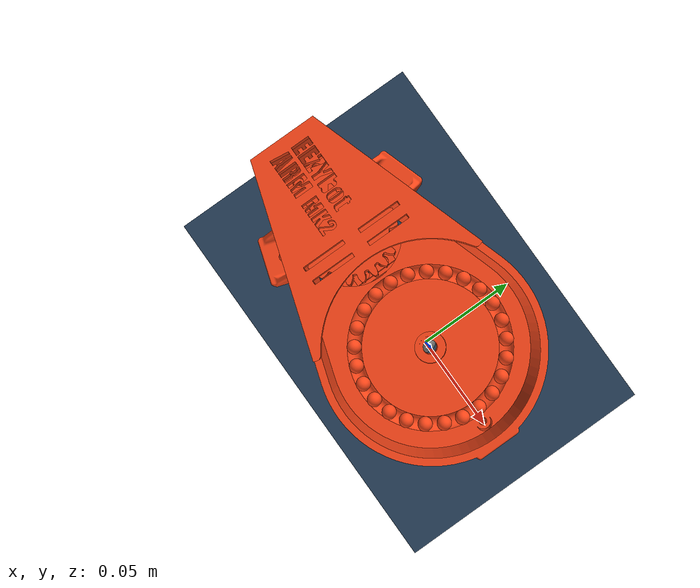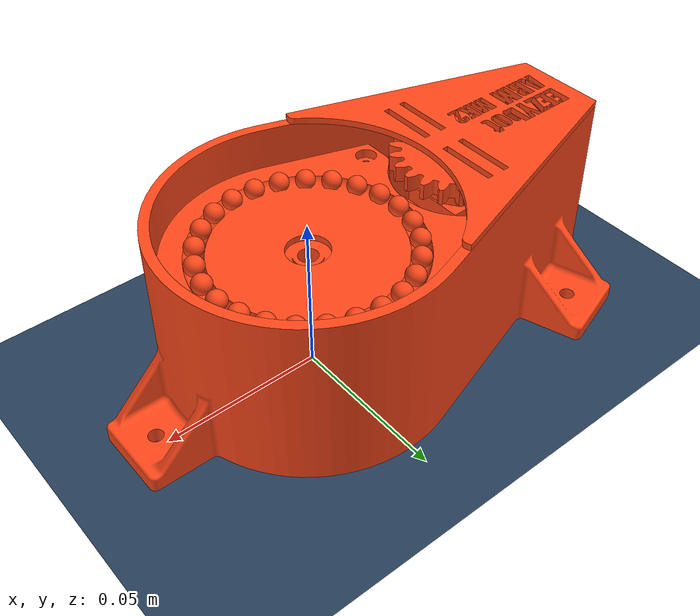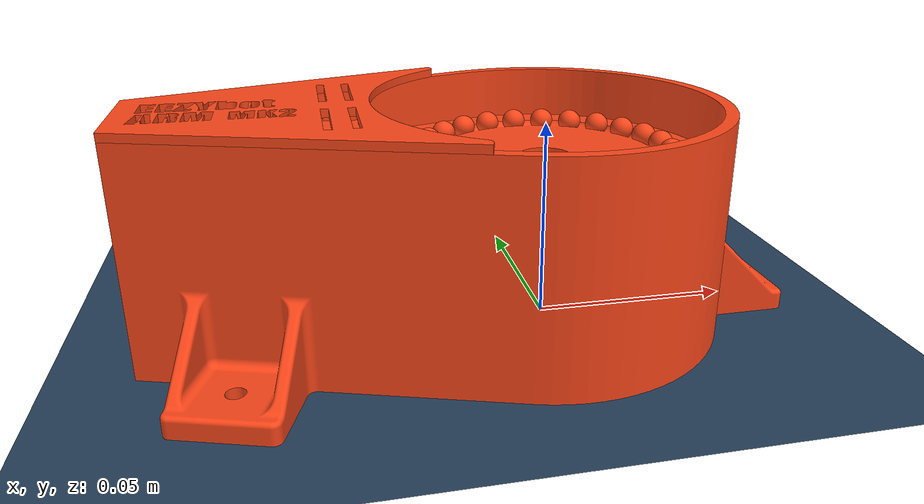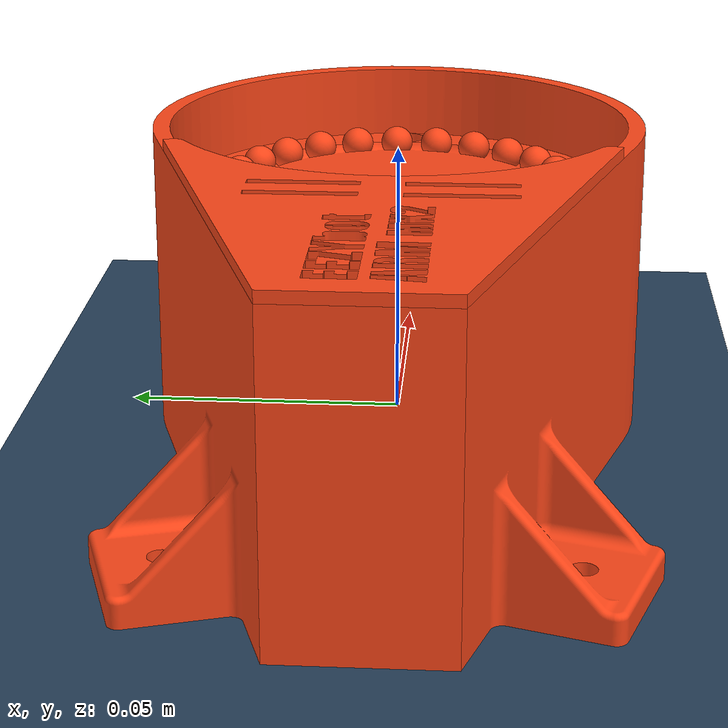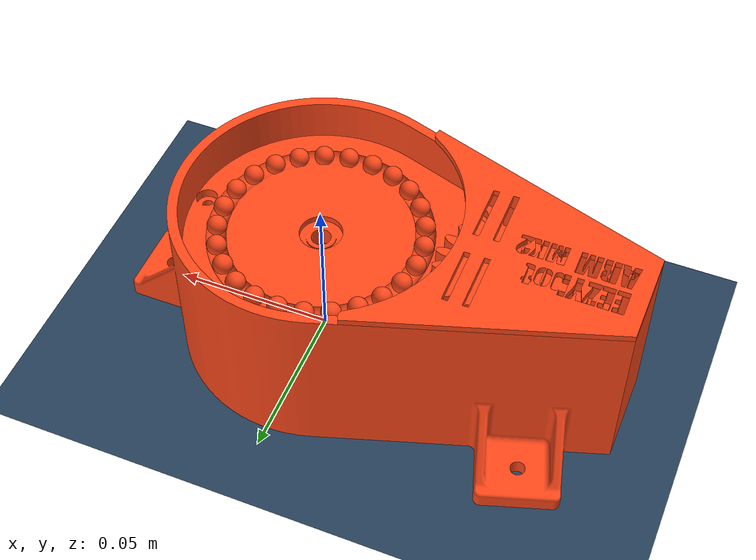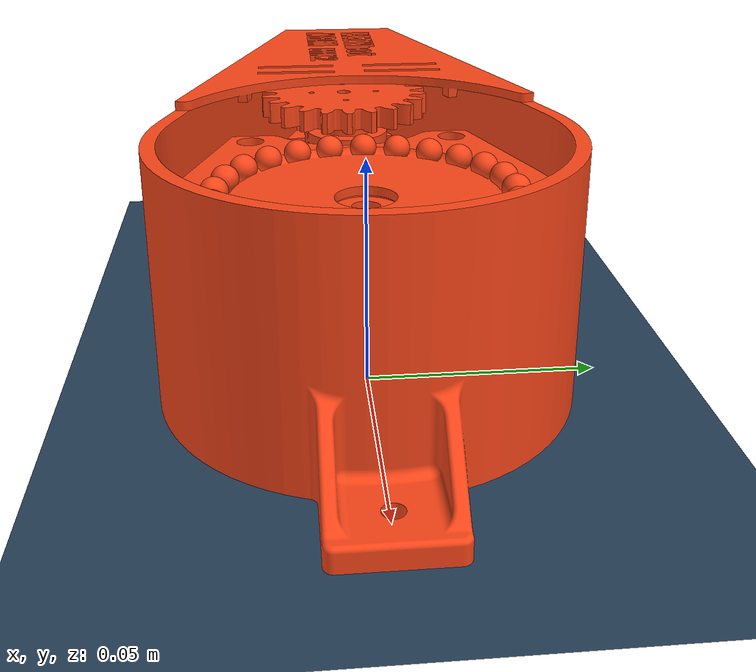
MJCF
<mujoco model="2dof-robot">
  <default>
    <default class="robot">
      <default class="visual">
        <geom material="visualgeom" contype="0" conaffinity="0" group="2" />
      </default>
      <default class="collision">
        <geom material="collision_material" condim="3" contype="0" conaffinity="1" priority="1" group="1" solref="0.005 1" solimp="0.99 0.999 1e-05" friction="1 0.01 0.01" />
      </default>
    </default>
  </default>

  <compiler angle="radian" meshdir="assets"/>

  <asset>
    <texture type="2d" name="groundplane" builtin="checker"
        rgb1="0.2 0.3 0.4" rgb2="0.1 0.2 0.3" width="300" height="300" mark="edge" markrgb="0.8 0.8 0.8"/>
    <material name="groundplane" texture="groundplane" texuniform="true" texrepeat="5 5" reflectance="0.2"/>
  </asset>

  <asset>
    <material name="019_cover_material" rgba="0.843137 0.352941 0 1" />
    <material name="mg946r_material" rgba="0.262745 0.282353 0.301961 1" />
    <material name="020_ball_material" rgba="0.737255 0.937255 0.917647 1" />
    <material name="mg946r_piattelo_material" rgba="0.0431373 0.0392157 0.0392157 1" />
    <material name="606_material" rgba="0.901961 0.901961 0.901961 1" />
    <material name="default_material" rgba="0.7 0.7 0.7 1" />
    <material name="collision_material" rgba="1.0 0.28 0.1 0.9" />
    <mesh name="019_cover.stl" file="019_cover.stl" />
    <mesh name="013_lower_base.stl" file="013_lower_base.stl" />
    <mesh name="mg946r.stl" file="mg946r.stl" />
    <mesh name="020_ball.stl" file="020_ball.stl" />
    <mesh name="010_gearservo.stl" file="010_gearservo.stl" />
    <mesh name="mg946r_piattelo.stl" file="mg946r_piattelo.stl" />
    <mesh name="012_base.stl" file="012_base.stl" />
    <mesh name="606.stl" file="606.stl" />
  </asset>

  <worldbody>
    <geom name="floor" type="plane" size="0 0 0.05" material="groundplane"/>

    <body name="ebamk2_01" pos="0.00000000 0.00000000 0.00000000" quat="1 0 0 0" childclass="robot">
      <freejoint name="floating_base" />
      <geom name="ebamk2_01_collision_0" pos="0 0 0.055" quat="1.0 0.0 0.0 0.0" type="mesh" mesh="019_cover.stl" class="collision" />
      <geom name="ebamk2_01_collision_1" pos="0 -0 0.034" quat="1.0 0.0 0.0 0.0" type="mesh" mesh="013_lower_base.stl" class="collision" />
      <geom name="ebamk2_01_collision_2" pos="-0.06605 -0 0.0085" quat="1.0 0.0 0.0 0.0" type="mesh" mesh="mg946r.stl" class="collision" />
      <geom name="ebamk2_01_collision_3" pos="0 0.0309123 0.0428783" quat="1.0 0.0 0.0 0.0" type="mesh" mesh="020_ball.stl" class="collision" />
      <geom name="ebamk2_01_collision_4" pos="-0.0563 -0.00075 0.04445" quat="0.4999981633974483 -0.49999999999662686 -0.5000018366025516 0.49999999999662686" type="mesh" mesh="010_gearservo.stl" class="collision" />
      <geom name="ebamk2_01_collision_5" pos="-0.0563 -0 0.0459" quat="1.0 0.0 0.0 0.0" type="mesh" mesh="mg946r_piattelo.stl" class="collision" />
      <geom name="ebamk2_01_collision_6" pos="0 0 0" quat="1.0 0.0 0.0 0.0" type="mesh" mesh="012_base.stl" class="collision" />
      <geom name="ebamk2_01_collision_7" pos="0 0 0.037" quat="1.0 0.0 0.0 0.0" type="mesh" mesh="606.stl" class="collision" />
      <geom name="ebamk2_01_collision_8" pos="0.0181698 -0.0250086 0.0428783" quat="0.30901895491635295 0.0 -0.0 -0.9510558792744015" type="mesh" mesh="020_ball.stl" class="collision" />
      <geom name="ebamk2_01_collision_9" pos="0.0261001 0.0165636 0.0428783" quat="0.8763065955319068 0.0 -0.0 -0.48175382782836196" type="mesh" mesh="020_ball.stl" class="collision" />
      <geom name="ebamk2_01_collision_10" pos="-0.0113796 -0.0287415 0.0428783" quat="0.18738206856923498 0.0 0.0 0.9822871068983419" type="mesh" mesh="020_ball.stl" class="collision" />
      <geom name="ebamk2_01_collision_11" pos="0.00387434 -0.0306685 0.0428783" quat="0.06278999429089267 0.0 -0.0 -0.9980267614733332" type="mesh" mesh="020_ball.stl" class="collision" />
      <geom name="ebamk2_01_collision_12" pos="0.0148921 0.0270886 0.0428783" quat="0.9685831393153369 0.0 -0.0 -0.24868997212201094" type="mesh" mesh="020_ball.stl" class="collision" />
      <geom name="ebamk2_01_collision_13" pos="-0.0308513 0.001941 0.0428783" quat="0.7289701586566885 0.0 0.0 0.6845454753250819" type="mesh" mesh="020_ball.stl" class="collision" />
      <geom name="ebamk2_01_collision_14" pos="0.00768757 0.0299411 0.0428783" quat="0.9921147271510997 0.0 -0.0 -0.12533302904621366" type="mesh" mesh="020_ball.stl" class="collision" />
      <geom name="ebamk2_01_collision_15" pos="0.0303647 -0.00579238 0.0428783" quat="0.6374247163463563 0.0 -0.0 -0.7705126416813466" type="mesh" mesh="020_ball.stl" class="collision" />
      <geom name="ebamk2_01_collision_16" pos="0.0308513 0.001941 0.0428783" quat="0.7289701586566885 0.0 -0.0 -0.6845454753250819" type="mesh" mesh="020_ball.stl" class="collision" />
      <geom name="ebamk2_01_collision_17" pos="-0.0303647 -0.00579238 0.0428783" quat="0.6374247163463563 0.0 0.0 0.7705126416813466" type="mesh" mesh="020_ball.stl" class="collision" />
      <geom name="ebamk2_01_collision_18" pos="-0.0261001 0.0165636 0.0428783" quat="0.8763065955319068 0.0 0.0 0.48175382782836196" type="mesh" mesh="020_ball.stl" class="collision" />
      <geom name="ebamk2_01_collision_19" pos="0.0238183 -0.0197042 0.0428783" quat="0.42577780338849947 0.0 -0.0 -0.9048277527472642" type="mesh" mesh="020_ball.stl" class="collision" />
      <geom name="ebamk2_01_collision_20" pos="-0.0148921 0.0270886 0.0428783" quat="0.9685831393153369 0.0 0.0 0.24868997212201094" type="mesh" mesh="020_ball.stl" class="collision" />
      <geom name="ebamk2_01_collision_21" pos="0.0113796 -0.0287415 0.0428783" quat="0.18738206856923498 0.0 -0.0 -0.9822871068983419" type="mesh" mesh="020_ball.stl" class="collision" />
      <geom name="ebamk2_01_collision_22" pos="0.0211609 0.0225341 0.0428783" quat="0.929776529485521 0.0 -0.0 -0.3681244425705254" type="mesh" mesh="020_ball.stl" class="collision" />
      <geom name="ebamk2_01_collision_23" pos="-0.0181698 -0.0250086 0.0428783" quat="0.30901895491635295 0.0 0.0 0.9510558792744015" type="mesh" mesh="020_ball.stl" class="collision" />
      <geom name="ebamk2_01_collision_24" pos="-0.0211609 0.0225341 0.0428783" quat="0.929776529485521 0.0 0.0 0.3681244425705254" type="mesh" mesh="020_ball.stl" class="collision" />
      <geom name="ebamk2_01_collision_25" pos="-0.0238183 -0.0197042 0.0428783" quat="0.42577780338849947 0.0 0.0 0.9048277527472642" type="mesh" mesh="020_ball.stl" class="collision" />
      <geom name="ebamk2_01_collision_26" pos="-0.00768757 0.0299411 0.0428783" quat="0.9921147271510997 0.0 0.0 0.12533302904621366" type="mesh" mesh="020_ball.stl" class="collision" />
      <geom name="ebamk2_01_collision_27" pos="0.0279703 -0.0131618 0.0428783" quat="0.535826498745442 0.0 -0.0 -0.8443281134974725" type="mesh" mesh="020_ball.stl" class="collision" />
      <geom name="ebamk2_01_collision_28" pos="-0.00387434 -0.0306685 0.0428783" quat="0.06278999429089267 0.0 0.0 0.9980267614733332" type="mesh" mesh="020_ball.stl" class="collision" />
      <geom name="ebamk2_01_collision_29" pos="0.0293993 0.00955242 0.0428783" quat="0.8090161307517588 0.0 -0.0 -0.5877864409659797" type="mesh" mesh="020_ball.stl" class="collision" />
      <geom name="ebamk2_01_collision_30" pos="-0.0279703 -0.0131618 0.0428783" quat="0.535826498745442 0.0 0.0 0.8443281134974725" type="mesh" mesh="020_ball.stl" class="collision" />
      <geom name="ebamk2_01_collision_31" pos="-0.0293993 0.00955242 0.0428783" quat="0.8090161307517588 0.0 0.0 0.5877864409659797" type="mesh" mesh="020_ball.stl" class="collision" />
      <geom name="ebamk2_01_visual_0" pos="0 0 0.055" quat="1.0 0.0 0.0 0.0" material="019_cover_material" type="mesh" mesh="019_cover.stl" class="visual" />
      <geom name="ebamk2_01_visual_1" pos="0 -0 0.034" quat="1.0 0.0 0.0 0.0" material="019_cover_material" type="mesh" mesh="013_lower_base.stl" class="visual" />
      <geom name="ebamk2_01_visual_2" pos="-0.06605 -0 0.0085" quat="1.0 0.0 0.0 0.0" material="mg946r_material" type="mesh" mesh="mg946r.stl" class="visual" />
      <geom name="ebamk2_01_visual_3" pos="0 0.0309123 0.0428783" quat="1.0 0.0 0.0 0.0" material="020_ball_material" type="mesh" mesh="020_ball.stl" class="visual" />
      <geom name="ebamk2_01_visual_4" pos="-0.0563 -0.00075 0.04445" quat="0.4999981633974483 -0.49999999999662686 -0.5000018366025516 0.49999999999662686" material="019_cover_material" type="mesh" mesh="010_gearservo.stl" class="visual" />
      <geom name="ebamk2_01_visual_5" pos="-0.0563 -0 0.0459" quat="1.0 0.0 0.0 0.0" material="mg946r_piattelo_material" type="mesh" mesh="mg946r_piattelo.stl" class="visual" />
      <geom name="ebamk2_01_visual_6" pos="0 0 0" quat="1.0 0.0 0.0 0.0" material="019_cover_material" type="mesh" mesh="012_base.stl" class="visual" />
      <geom name="ebamk2_01_visual_7" pos="0 0 0.037" quat="1.0 0.0 0.0 0.0" material="606_material" type="mesh" mesh="606.stl" class="visual" />
      <geom name="ebamk2_01_visual_8" pos="0.0181698 -0.0250086 0.0428783" quat="0.30901895491635295 0.0 -0.0 -0.9510558792744015" material="020_ball_material" type="mesh" mesh="020_ball.stl" class="visual" />
      <geom name="ebamk2_01_visual_9" pos="0.0261001 0.0165636 0.0428783" quat="0.8763065955319068 0.0 -0.0 -0.48175382782836196" material="020_ball_material" type="mesh" mesh="020_ball.stl" class="visual" />
      <geom name="ebamk2_01_visual_10" pos="-0.0113796 -0.0287415 0.0428783" quat="0.18738206856923498 0.0 0.0 0.9822871068983419" material="020_ball_material" type="mesh" mesh="020_ball.stl" class="visual" />
      <geom name="ebamk2_01_visual_11" pos="0.00387434 -0.0306685 0.0428783" quat="0.06278999429089267 0.0 -0.0 -0.9980267614733332" material="020_ball_material" type="mesh" mesh="020_ball.stl" class="visual" />
      <geom name="ebamk2_01_visual_12" pos="0.0148921 0.0270886 0.0428783" quat="0.9685831393153369 0.0 -0.0 -0.24868997212201094" material="020_ball_material" type="mesh" mesh="020_ball.stl" class="visual" />
      <geom name="ebamk2_01_visual_13" pos="-0.0308513 0.001941 0.0428783" quat="0.7289701586566885 0.0 0.0 0.6845454753250819" material="020_ball_material" type="mesh" mesh="020_ball.stl" class="visual" />
      <geom name="ebamk2_01_visual_14" pos="0.00768757 0.0299411 0.0428783" quat="0.9921147271510997 0.0 -0.0 -0.12533302904621366" material="020_ball_material" type="mesh" mesh="020_ball.stl" class="visual" />
      <geom name="ebamk2_01_visual_15" pos="0.0303647 -0.00579238 0.0428783" quat="0.6374247163463563 0.0 -0.0 -0.7705126416813466" material="020_ball_material" type="mesh" mesh="020_ball.stl" class="visual" />
      <geom name="ebamk2_01_visual_16" pos="0.0308513 0.001941 0.0428783" quat="0.7289701586566885 0.0 -0.0 -0.6845454753250819" material="020_ball_material" type="mesh" mesh="020_ball.stl" class="visual" />
      <geom name="ebamk2_01_visual_17" pos="-0.0303647 -0.00579238 0.0428783" quat="0.6374247163463563 0.0 0.0 0.7705126416813466" material="020_ball_material" type="mesh" mesh="020_ball.stl" class="visual" />
      <geom name="ebamk2_01_visual_18" pos="-0.0261001 0.0165636 0.0428783" quat="0.8763065955319068 0.0 0.0 0.48175382782836196" material="020_ball_material" type="mesh" mesh="020_ball.stl" class="visual" />
      <geom name="ebamk2_01_visual_19" pos="0.0238183 -0.0197042 0.0428783" quat="0.42577780338849947 0.0 -0.0 -0.9048277527472642" material="020_ball_material" type="mesh" mesh="020_ball.stl" class="visual" />
      <geom name="ebamk2_01_visual_20" pos="-0.0148921 0.0270886 0.0428783" quat="0.9685831393153369 0.0 0.0 0.24868997212201094" material="020_ball_material" type="mesh" mesh="020_ball.stl" class="visual" />
      <geom name="ebamk2_01_visual_21" pos="0.0113796 -0.0287415 0.0428783" quat="0.18738206856923498 0.0 -0.0 -0.9822871068983419" material="020_ball_material" type="mesh" mesh="020_ball.stl" class="visual" />
      <geom name="ebamk2_01_visual_22" pos="0.0211609 0.0225341 0.0428783" quat="0.929776529485521 0.0 -0.0 -0.3681244425705254" material="020_ball_material" type="mesh" mesh="020_ball.stl" class="visual" />
      <geom name="ebamk2_01_visual_23" pos="-0.0181698 -0.0250086 0.0428783" quat="0.30901895491635295 0.0 0.0 0.9510558792744015" material="020_ball_material" type="mesh" mesh="020_ball.stl" class="visual" />
      <geom name="ebamk2_01_visual_24" pos="-0.0211609 0.0225341 0.0428783" quat="0.929776529485521 0.0 0.0 0.3681244425705254" material="020_ball_material" type="mesh" mesh="020_ball.stl" class="visual" />
      <geom name="ebamk2_01_visual_25" pos="-0.0238183 -0.0197042 0.0428783" quat="0.42577780338849947 0.0 0.0 0.9048277527472642" material="020_ball_material" type="mesh" mesh="020_ball.stl" class="visual" />
      <geom name="ebamk2_01_visual_26" pos="-0.00768757 0.0299411 0.0428783" quat="0.9921147271510997 0.0 0.0 0.12533302904621366" material="020_ball_material" type="mesh" mesh="020_ball.stl" class="visual" />
      <geom name="ebamk2_01_visual_27" pos="0.0279703 -0.0131618 0.0428783" quat="0.535826498745442 0.0 -0.0 -0.8443281134974725" material="020_ball_material" type="mesh" mesh="020_ball.stl" class="visual" />
      <geom name="ebamk2_01_visual_28" pos="-0.00387434 -0.0306685 0.0428783" quat="0.06278999429089267 0.0 0.0 0.9980267614733332" material="020_ball_material" type="mesh" mesh="020_ball.stl" class="visual" />
      <geom name="ebamk2_01_visual_29" pos="0.0293993 0.00955242 0.0428783" quat="0.8090161307517588 0.0 -0.0 -0.5877864409659797" material="020_ball_material" type="mesh" mesh="020_ball.stl" class="visual" />
      <geom name="ebamk2_01_visual_30" pos="-0.0279703 -0.0131618 0.0428783" quat="0.535826498745442 0.0 0.0 0.8443281134974725" material="020_ball_material" type="mesh" mesh="020_ball.stl" class="visual" />
      <geom name="ebamk2_01_visual_31" pos="-0.0293993 0.00955242 0.0428783" quat="0.8090161307517588 0.0 0.0 0.5877864409659797" material="020_ball_material" type="mesh" mesh="020_ball.stl" class="visual" />
      <site name="ebamk2_01_site" pos="0 0 0" quat="1 0 0 0" />
      <camera name="front_camera" mode="track" fovy="90.0" quat="4.329780281177467e-17 4.329780281177466e-17 0.7071067811865475 0.7071067811865476" pos="0.0 2.0 0.5" />
      <camera name="side_camera" mode="track" fovy="90.0" quat="-0.5 -0.4999999999999999 0.5 0.5000000000000001" pos="-2.0 0.0 0.5" />
    </body>
  </worldbody>

  <actuator />

  <sensor>
    <framepos name="ebamk2_01_site_pos" objtype="site" objname="ebamk2_01_site" />
    <framequat name="ebamk2_01_site_quat" objtype="site" objname="ebamk2_01_site" />
    <framelinvel name="ebamk2_01_site_linvel" objtype="site" objname="ebamk2_01_site" />
    <frameangvel name="ebamk2_01_site_angvel" objtype="site" objname="ebamk2_01_site" />
    <velocimeter name="ebamk2_01_site_vel" site="ebamk2_01_site" />
  </sensor>
</mujoco>
